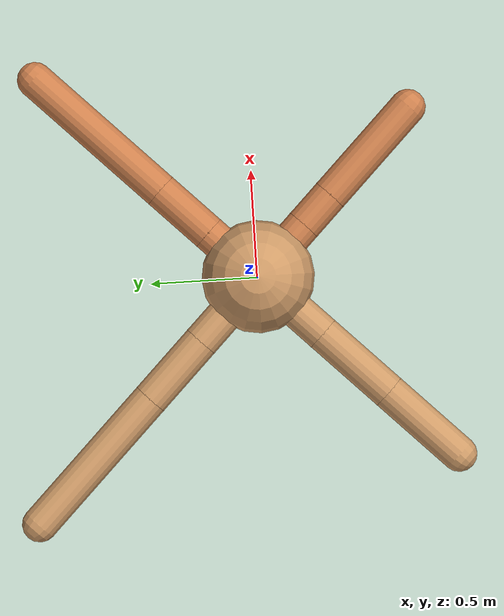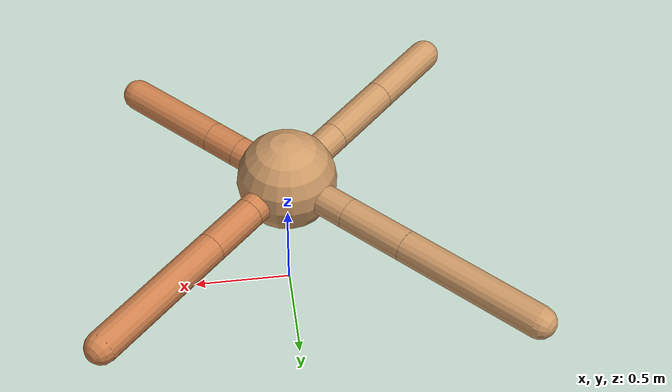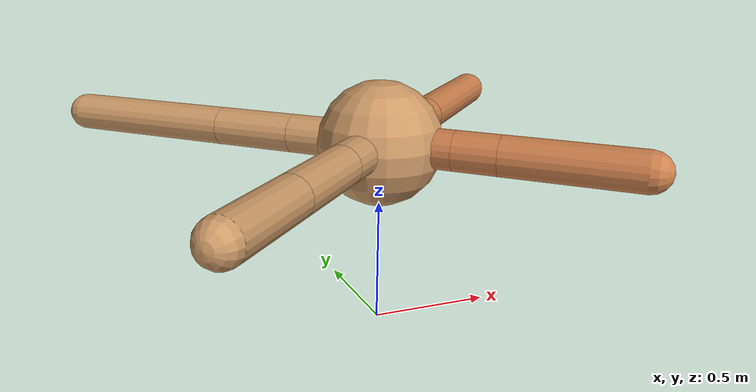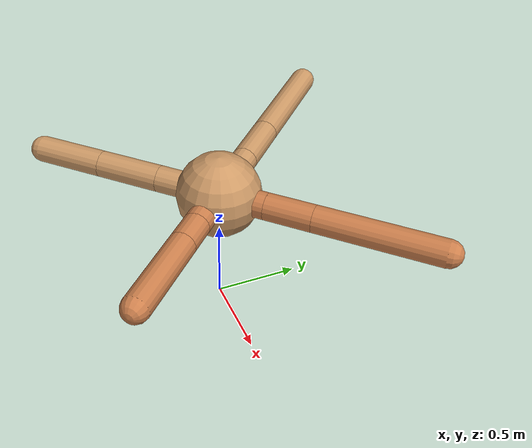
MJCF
<mujoco model="ant">
  <compiler angle="degree" coordinate="local" inertiafromgeom="true" />
  <option integrator="RK4" timestep="0.01" />
  <custom>
    <numeric data="0.0 0.0 0.55 1.0 0.0 0.0 0.0 0.0 1.0 0.0 -1.0 0.0 -1.0 0.0 1.0" name="init_qpos" />
  </custom>
  <default>
    <joint armature="1" damping="1" limited="true" />
    <geom conaffinity="0" condim="3" density="5.0" friction="1.5 0.1 0.1" margin="0.01" rgba="0.8 0.6 0.4 1" />
  </default>
  <worldbody>
    <body name="torso" pos="0 0 0.75">
      <geom name="torso_geom" pos="0 0 0" size="0.25" type="sphere" />

      <body name="front_left_leg" pos="0 0 0">
        <geom fromto="0.0 0.0 0.0 0.20553805847211512 0.20553805847211512 0.0" name="aux_1_geom" size="0.08" type="capsule" rgba=".8 .5 .3 1" />
        <body name="aux_1" pos="0.20553805847211512 0.20553805847211512 0.0">
          <joint axis="0 0 1" name="hip_1" pos="0.0 0.0 0.0" range="-40 40" type="hinge" />
          <geom fromto="0.0 0.0 0.0 0.19933039327302007 0.19933039327302007 0.0" name="left_leg_geom" size="0.08" type="capsule" rgba=".8 .5 .3 1" />
          <body pos="0.19933039327302007 0.19933039327302007 0.0" name="front_left_foot">
            <joint axis="-1 1 0" name="ankle_1" pos="0.0 0.0 0.0" range="30 100" type="hinge" />
            <geom fromto="0.0 0.0 0.0 0.5234304263746999 0.5234304263746999 0.0" name="left_ankle_geom" size="0.08" type="capsule" rgba=".8 .5 .3 1" />
          </body>
        </body>
      </body>
      <body name="front_right_leg" pos="0 0 0">
        <geom fromto="0.0 0.0 0.0 -0.27003024128282604 0.27003024128282604 0.0" name="aux_2_geom" size="0.08" type="capsule" />
        <body name="aux_2" pos="-0.27003024128282604 0.27003024128282604 0.0">
          <joint axis="0 0 1" name="hip_2" pos="0.0 0.0 0.0" range="-40 40" type="hinge" />
          <geom fromto="0.0 0.0 0.0 -0.2386891896886029 0.2386891896886029 0.0" name="right_leg_geom" size="0.08" type="capsule" />
          <body pos="-0.2386891896886029 0.2386891896886029 0.0" name="front_right_foot">
            <joint axis="1 1 0" name="ankle_2" pos="0.0 0.0 0.0" range="-100 -30" type="hinge" />
            <geom fromto="0.0 0.0 0.0 -0.5215150576034651 0.5215150576034651 0.0" name="right_ankle_geom" size="0.08" type="capsule" />
          </body>
        </body>
      </body>
      <body name="left_back_leg" pos="0 0 0">
        <geom fromto="0.0 0.0 0.0 -0.26872574419128265 -0.26872574419128265 0.0" name="aux_3_geom" size="0.08" type="capsule" />
        <body name="aux_3" pos="-0.26872574419128265 -0.26872574419128265 0.0">
          <joint axis="0 0 1" name="hip_3" pos="0.0 0.0 0.0" range="-40 40" type="hinge" />
          <geom fromto="0.0 0.0 0.0 -0.2739109350331354 -0.2739109350331354 0.0" name="back_leg_geom" size="0.08" type="capsule" />
          <body pos="-0.2739109350331354 -0.2739109350331354 0.0" name="left_back_foot">
            <joint axis="-1 1 0" name="ankle_3" pos="0.0 0.0 0.0" range="-100 -30" type="hinge" />
            <geom fromto="0.0 0.0 0.0 -0.2939647408725285 -0.2939647408725285 0.0" name="third_ankle_geom" size="0.08" type="capsule" />
          </body>
        </body>
      </body>
      <body name="right_back_leg" pos="0 0 0">
        <geom fromto="0.0 0.0 0.0 0.2147448301018483 -0.2147448301018483 0.0" name="aux_4_geom" size="0.08" type="capsule" rgba=".8 .5 .3 1" />
        <body name="aux_4" pos="0.2147448301018483 -0.2147448301018483 0.0">
          <joint axis="0 0 1" name="hip_4" pos="0.0 0.0 0.0" range="-40 40" type="hinge" />
          <geom fromto="0.0 0.0 0.0 0.12349178162242391 -0.12349178162242391 0.0" name="rightback_leg_geom" size="0.08" type="capsule" rgba=".8 .5 .3 1" />
          <body pos="0.12349178162242391 -0.12349178162242391 0.0" name="right_back_foot">
            <joint axis="1 1 0" name="ankle_4" pos="0.0 0.0 0.0" range="30 100" type="hinge" />
            <geom fromto="0.0 0.0 0.0 0.36747043388769296 -0.36747043388769296 0.0" name="fourth_ankle_geom" size="0.08" type="capsule" rgba=".8 .5 .3 1" />
          </body>
        </body>
      </body>
    </body>
  </worldbody>
  <actuator>
    <motor ctrllimited="true" ctrlrange="-1.0 1.0" joint="hip_4" gear="150" />
    <motor ctrllimited="true" ctrlrange="-1.0 1.0" joint="ankle_4" gear="150" />
    <motor ctrllimited="true" ctrlrange="-1.0 1.0" joint="hip_1" gear="150" />
    <motor ctrllimited="true" ctrlrange="-1.0 1.0" joint="ankle_1" gear="150" />
    <motor ctrllimited="true" ctrlrange="-1.0 1.0" joint="hip_2" gear="150" />
    <motor ctrllimited="true" ctrlrange="-1.0 1.0" joint="ankle_2" gear="150" />
    <motor ctrllimited="true" ctrlrange="-1.0 1.0" joint="hip_3" gear="150" />
    <motor ctrllimited="true" ctrlrange="-1.0 1.0" joint="ankle_3" gear="150" />
  </actuator>
</mujoco>
